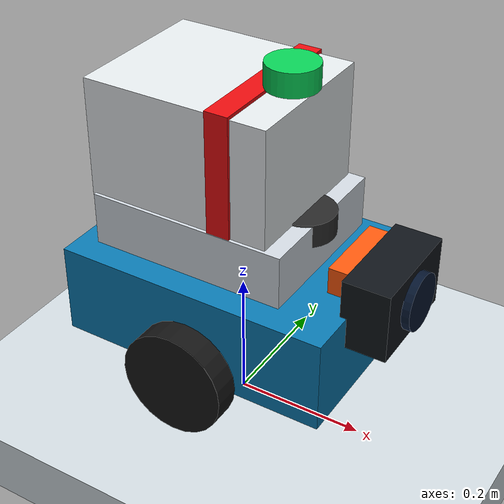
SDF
<?xml version="1.0"?>
<sdf version="1.9">
  <world name="flyto_nav2_closed_loop">
    <physics name="default_physics" type="dart">
      <!-- 100 Hz remains above the 20 Hz controller and 10 Hz LiDAR while
           reducing scheduler starvation in the bounded simulation. -->
      <max_step_size>0.01</max_step_size>
      <real_time_factor>1.0</real_time_factor>
    </physics>
    <gravity>0 0 -9.80665</gravity>
    <plugin filename="gz-sim-physics-system" name="gz::sim::systems::Physics"/>
    <plugin filename="gz-sim-user-commands-system" name="gz::sim::systems::UserCommands"/>
    <plugin filename="gz-sim-scene-broadcaster-system" name="gz::sim::systems::SceneBroadcaster"/>
    <plugin filename="gz-sim-sensors-system" name="gz::sim::systems::Sensors">
      <render_engine>ogre2</render_engine>
    </plugin>
    <scene>
      <ambient>0.7 0.7 0.7 1</ambient>
      <background>0.92 0.95 0.98 1</background>
      <shadows>false</shadows>
    </scene>
    <light name="sun" type="directional">
      <pose>0 0 8 0 0 0</pose>
      <diffuse>0.9 0.9 0.9 1</diffuse>
      <direction>-0.3 0.2 -1</direction>
    </light>
    <model name="floor">
      <static>true</static>
      <link name="floor_link">
        <collision name="collision">
          <geometry><box><size>8 8 0.10</size></box></geometry>
        </collision>
        <visual name="visual">
          <geometry><box><size>8 8 0.10</size></box></geometry>
          <material>
            <ambient>0.62 0.66 0.68 1</ambient>
            <diffuse>0.82 0.86 0.88 1</diffuse>
          </material>
        </visual>
      </link>
    </model>
    <include>
      <uri>model://flyto_rover</uri>
      <name>flyto_rover</name>
      <pose>0 0 0.06 0 0 0</pose>
    </include>
  </world>
</sdf>

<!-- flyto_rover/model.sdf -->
<sdf version="1.9">
  <model name="flyto_rover">
    <static>false</static>
    <self_collide>false</self_collide>

    <link name="base_link">
      <pose>0 0 0.14 0 0 0</pose>
      <inertial>
        <mass>8.0</mass>
        <inertia>
          <ixx>0.075</ixx>
          <iyy>0.135</iyy>
          <izz>0.195</izz>
          <ixy>0</ixy>
          <ixz>0</ixz>
          <iyz>0</iyz>
        </inertia>
      </inertial>
      <collision name="base_collision">
        <geometry>
          <box>
            <size>0.42 0.30 0.14</size>
          </box>
        </geometry>
      </collision>
      <visual name="base_visual">
        <geometry>
          <box>
            <size>0.42 0.30 0.14</size>
          </box>
        </geometry>
        <material>
          <ambient>0.04 0.28 0.42 1</ambient>
          <diffuse>0.04 0.48 0.70 1</diffuse>
          <specular>0.2 0.2 0.2 1</specular>
        </material>
      </visual>
      <visual name="payload_tray">
        <pose>-0.02 0 0.12 0 0 0</pose>
        <geometry>
          <box>
            <size>0.30 0.24 0.08</size>
          </box>
        </geometry>
        <material>
          <ambient>0.65 0.68 0.72 1</ambient>
          <diffuse>0.82 0.85 0.88 1</diffuse>
        </material>
      </visual>
      <visual name="locked_medication_container">
        <pose>-0.035 0 0.245 0 0 0</pose>
        <geometry>
          <box>
            <size>0.28 0.23 0.18</size>
          </box>
        </geometry>
        <material>
          <ambient>0.70 0.72 0.74 1</ambient>
          <diffuse>0.90 0.92 0.93 1</diffuse>
          <specular>0.35 0.35 0.35 1</specular>
        </material>
      </visual>
      <visual name="container_lock_band">
        <pose>0.035 0 0.245 0 0 0</pose>
        <geometry>
          <box>
            <size>0.035 0.238 0.19</size>
          </box>
        </geometry>
        <material>
          <ambient>0.65 0.03 0.04 1</ambient>
          <diffuse>0.92 0.05 0.06 1</diffuse>
        </material>
      </visual>
      <visual name="status_light">
        <pose>0.075 0 0.357 0 0 0</pose>
        <geometry>
          <cylinder>
            <radius>0.038</radius>
            <length>0.035</length>
          </cylinder>
        </geometry>
        <material>
          <ambient>0.02 0.58 0.24 1</ambient>
          <diffuse>0.03 0.82 0.34 1</diffuse>
          <emissive>0.01 0.36 0.12 1</emissive>
        </material>
      </visual>
      <visual name="camera_housing">
        <pose>0.235 0 0.075 0 0 0</pose>
        <geometry>
          <box>
            <size>0.07 0.16 0.105</size>
          </box>
        </geometry>
        <material>
          <ambient>0.025 0.035 0.045 1</ambient>
          <diffuse>0.06 0.08 0.10 1</diffuse>
          <specular>0.55 0.55 0.55 1</specular>
        </material>
      </visual>
      <visual name="camera_lens">
        <pose>0.273 0 0.075 0 1.5708 0</pose>
        <geometry>
          <cylinder>
            <radius>0.042</radius>
            <length>0.018</length>
          </cylinder>
        </geometry>
        <material>
          <ambient>0.01 0.03 0.07 1</ambient>
          <diffuse>0.02 0.08 0.18 1</diffuse>
          <specular>0.8 0.8 0.8 1</specular>
        </material>
      </visual>
      <visual name="direction_marker">
        <pose>0.19 0 0.105 0 0 0</pose>
        <geometry>
          <box>
            <size>0.04 0.12 0.04</size>
          </box>
        </geometry>
        <material>
          <ambient>0.9 0.25 0.05 1</ambient>
          <diffuse>1 0.35 0.05 1</diffuse>
        </material>
      </visual>
    </link>

    <link name="left_wheel">
      <pose>0 0.17 0.08 1.5708 0 0</pose>
      <inertial>
        <mass>0.6</mass>
        <inertia>
          <ixx>0.002</ixx>
          <iyy>0.002</iyy>
          <izz>0.001</izz>
          <ixy>0</ixy>
          <ixz>0</ixz>
          <iyz>0</iyz>
        </inertia>
      </inertial>
      <collision name="collision">
        <geometry>
          <cylinder>
            <radius>0.08</radius>
            <length>0.04</length>
          </cylinder>
        </geometry>
        <surface>
          <friction>
            <ode>
              <mu>1.0</mu>
              <mu2>1.0</mu2>
            </ode>
          </friction>
        </surface>
      </collision>
      <visual name="visual">
        <geometry>
          <cylinder>
            <radius>0.08</radius>
            <length>0.04</length>
          </cylinder>
        </geometry>
        <material>
          <ambient>0.03 0.03 0.03 1</ambient>
          <diffuse>0.08 0.08 0.08 1</diffuse>
        </material>
      </visual>
    </link>

    <link name="right_wheel">
      <pose>0 -0.17 0.08 1.5708 0 0</pose>
      <inertial>
        <mass>0.6</mass>
        <inertia>
          <ixx>0.002</ixx>
          <iyy>0.002</iyy>
          <izz>0.001</izz>
          <ixy>0</ixy>
          <ixz>0</ixz>
          <iyz>0</iyz>
        </inertia>
      </inertial>
      <collision name="collision">
        <geometry>
          <cylinder>
            <radius>0.08</radius>
            <length>0.04</length>
          </cylinder>
        </geometry>
        <surface>
          <friction>
            <ode>
              <mu>1.0</mu>
              <mu2>1.0</mu2>
            </ode>
          </friction>
        </surface>
      </collision>
      <visual name="visual">
        <geometry>
          <cylinder>
            <radius>0.08</radius>
            <length>0.04</length>
          </cylinder>
        </geometry>
        <material>
          <ambient>0.03 0.03 0.03 1</ambient>
          <diffuse>0.08 0.08 0.08 1</diffuse>
        </material>
      </visual>
    </link>

    <link name="rear_caster">
      <pose>-0.15 0 0.045 0 0 0</pose>
      <inertial>
        <mass>0.15</mass>
        <inertia>
          <ixx>0.0001</ixx>
          <iyy>0.0001</iyy>
          <izz>0.0001</izz>
          <ixy>0</ixy>
          <ixz>0</ixz>
          <iyz>0</iyz>
        </inertia>
      </inertial>
      <collision name="collision">
        <geometry>
          <sphere>
            <radius>0.045</radius>
          </sphere>
        </geometry>
        <surface>
          <friction>
            <ode>
              <mu>0.05</mu>
              <mu2>0.05</mu2>
            </ode>
          </friction>
        </surface>
      </collision>
      <visual name="visual">
        <geometry>
          <sphere>
            <radius>0.045</radius>
          </sphere>
        </geometry>
        <material>
          <ambient>0.12 0.12 0.12 1</ambient>
          <diffuse>0.2 0.2 0.2 1</diffuse>
        </material>
      </visual>
    </link>

    <link name="lidar_link">
      <pose>0.10 0 0.285 0 0 0</pose>
      <inertial>
        <mass>0.2</mass>
        <inertia>
          <ixx>0.0002</ixx>
          <iyy>0.0002</iyy>
          <izz>0.0002</izz>
          <ixy>0</ixy>
          <ixz>0</ixz>
          <iyz>0</iyz>
        </inertia>
      </inertial>
      <visual name="visual">
        <geometry>
          <cylinder>
            <radius>0.045</radius>
            <length>0.035</length>
          </cylinder>
        </geometry>
        <material>
          <ambient>0.08 0.08 0.08 1</ambient>
          <diffuse>0.16 0.16 0.16 1</diffuse>
        </material>
      </visual>
      <sensor name="front_lidar" type="gpu_lidar">
        <topic>/flyto/scan</topic>
        <gz_frame_id>lidar_link</gz_frame_id>
        <update_rate>10</update_rate>
        <always_on>true</always_on>
        <visualize>true</visualize>
        <lidar>
          <scan>
            <horizontal>
              <samples>360</samples>
              <resolution>1</resolution>
              <min_angle>-3.14159</min_angle>
              <max_angle>3.14159</max_angle>
            </horizontal>
          </scan>
          <range>
            <min>0.12</min>
            <max>8.0</max>
            <resolution>0.01</resolution>
          </range>
        </lidar>
      </sensor>
    </link>

    <link name="route_camera_link">
      <pose>0.32 0 0.30 0 1.5708 0</pose>
      <inertial>
        <mass>0.08</mass>
        <inertia>
          <ixx>0.00008</ixx>
          <iyy>0.00008</iyy>
          <izz>0.00008</izz>
          <ixy>0</ixy>
          <ixz>0</ixz>
          <iyz>0</iyz>
        </inertia>
      </inertial>
      <sensor name="route_camera" type="camera">
        <topic>/flyto/camera/image</topic>
        <update_rate>15</update_rate>
        <!-- The Nav2 lab does not consume video. Keep the optional camera
             demand-driven so it cannot starve safety-critical sensors. -->
        <always_on>false</always_on>
        <visualize>false</visualize>
        <camera>
          <horizontal_fov>1.20</horizontal_fov>
          <image>
            <width>160</width>
            <height>120</height>
            <format>R8G8B8</format>
          </image>
          <clip>
            <near>0.05</near>
            <far>1.0</far>
          </clip>
        </camera>
      </sensor>
    </link>

    <joint name="left_wheel_joint" type="revolute">
      <parent>base_link</parent>
      <child>left_wheel</child>
      <axis>
        <xyz expressed_in="__model__">0 1 0</xyz>
      </axis>
    </joint>
    <joint name="right_wheel_joint" type="revolute">
      <parent>base_link</parent>
      <child>right_wheel</child>
      <axis>
        <xyz expressed_in="__model__">0 1 0</xyz>
      </axis>
    </joint>
    <joint name="rear_caster_joint" type="ball">
      <parent>base_link</parent>
      <child>rear_caster</child>
    </joint>
    <joint name="lidar_joint" type="fixed">
      <parent>base_link</parent>
      <child>lidar_link</child>
    </joint>
    <joint name="route_camera_joint" type="fixed">
      <parent>base_link</parent>
      <child>route_camera_link</child>
    </joint>

    <plugin filename="gz-sim-diff-drive-system"
            name="gz::sim::systems::DiffDrive">
      <left_joint>left_wheel_joint</left_joint>
      <right_joint>right_wheel_joint</right_joint>
      <wheel_separation>0.34</wheel_separation>
      <wheel_radius>0.08</wheel_radius>
      <topic>/flyto/cmd_vel</topic>
      <odom_topic>/flyto/odom</odom_topic>
      <tf_topic>/flyto/tf</tf_topic>
      <frame_id>odom</frame_id>
      <child_frame_id>base_link</child_frame_id>
      <odom_publish_frequency>30</odom_publish_frequency>
    </plugin>
    <plugin filename="gz-sim-odometry-publisher-system"
            name="gz::sim::systems::OdometryPublisher">
      <odom_frame>world</odom_frame>
      <robot_base_frame>flyto_rover</robot_base_frame>
      <odom_topic>/flyto/ground_truth</odom_topic>
      <odom_publish_frequency>30</odom_publish_frequency>
      <dimensions>3</dimensions>
    </plugin>
  </model>
</sdf>
